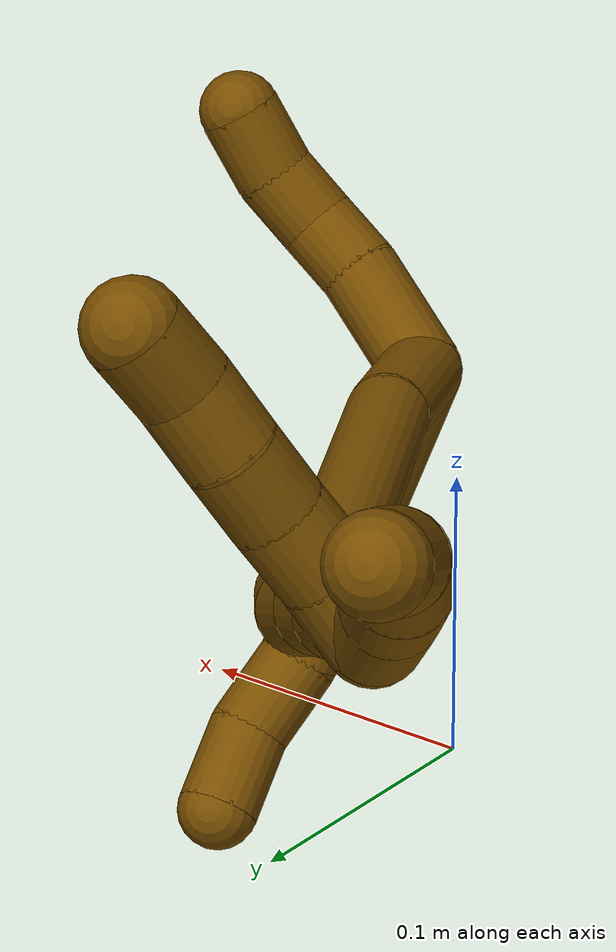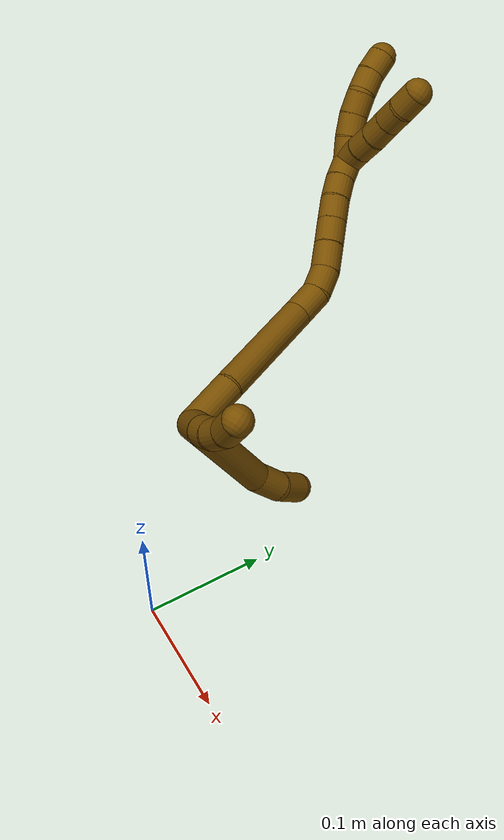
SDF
<sdf version="1.7">
 <world name="default">
  <model name="12">
   <static>0</static>
   <link name="12">
    <collision name="collision-cylinder-e_1_2_8">
     <pose>0.0424 0.023278 -0.001446 -1.63282 1.0679 -1.12307</pose>
     <geometry><cylinder><radius>0.0125</radius><length>0.096783</length></cylinder></geometry>
     <surface>
      <friction><ode><mu>1.16</mu><mu2>1.16</mu2><slip1>0</slip1><slip2>0</slip2></ode></friction>
      <contact><ode><kp>1e+06</kp><kd>1</kd><max_vel>0</max_vel><min_depth>0.001</min_depth></ode></contact>
     </surface>
    </collision>
    <visual name="visual-cylinder-e_1_2_8">
     <pose>0.0424 0.023278 -0.001446 -1.63282 1.0679 -1.12307</pose>
     <geometry><cylinder><radius>0.0125</radius><length>0.096783</length></cylinder></geometry>
     <material><ambient>0.466667 0.301961 0 1</ambient></material>
    </visual>
    <collision name="collision-cylinder-e_2_8_9">
     <pose>0.097167 0.050752 -0.000711 -1.09154 1.20558 -0.791797</pose>
     <geometry><cylinder><radius>0.0125</radius><length>0.026479</length></cylinder></geometry>
     <surface>
      <friction><ode><mu>1.16</mu><mu2>1.16</mu2><slip1>0</slip1><slip2>0</slip2></ode></friction>
      <contact><ode><kp>1e+06</kp><kd>1</kd><max_vel>0</max_vel><min_depth>0.001</min_depth></ode></contact>
     </surface>
    </collision>
    <visual name="visual-cylinder-e_2_8_9">
     <pose>0.097167 0.050752 -0.000711 -1.09154 1.20558 -0.791797</pose>
     <geometry><cylinder><radius>0.0125</radius><length>0.026479</length></cylinder></geometry>
     <material><ambient>0.466667 0.301961 0 1</ambient></material>
    </visual>
    <collision name="collision-cylinder-e_3_9_6">
     <pose>0.11982 0.062226 0.005933 -1.02069 0.878075 -0.514145</pose>
     <geometry><cylinder><radius>0.0125</radius><length>0.026738</length></cylinder></geometry>
     <surface>
      <friction><ode><mu>1.16</mu><mu2>1.16</mu2><slip1>0</slip1><slip2>0</slip2></ode></friction>
      <contact><ode><kp>1e+06</kp><kd>1</kd><max_vel>0</max_vel><min_depth>0.001</min_depth></ode></contact>
     </surface>
    </collision>
    <visual name="visual-cylinder-e_3_9_6">
     <pose>0.11982 0.062226 0.005933 -1.02069 0.878075 -0.514145</pose>
     <geometry><cylinder><radius>0.0125</radius><length>0.026738</length></cylinder></geometry>
     <material><ambient>0.466667 0.301961 0 1</ambient></material>
    </visual>
    <collision name="collision-cylinder-e_1_2_10">
     <pose>-0.001351 -0.018554 -0.001456 1.64913 -0.072459 -0.078364</pose>
     <geometry><cylinder><radius>0.0125</radius><length>0.037319</length></cylinder></geometry>
     <surface>
      <friction><ode><mu>1.16</mu><mu2>1.16</mu2><slip1>0</slip1><slip2>0</slip2></ode></friction>
      <contact><ode><kp>1e+06</kp><kd>1</kd><max_vel>0</max_vel><min_depth>0.001</min_depth></ode></contact>
     </surface>
    </collision>
    <visual name="visual-cylinder-e_1_2_10">
     <pose>-0.001351 -0.018554 -0.001456 1.64913 -0.072459 -0.078364</pose>
     <geometry><cylinder><radius>0.0125</radius><length>0.037319</length></cylinder></geometry>
     <material><ambient>0.466667 0.301961 0 1</ambient></material>
    </visual>
    <collision name="collision-cylinder-e_2_10_11">
     <pose>-0.002004 -0.047098 -0.002836 1.56316 0.069693 0.069163</pose>
     <geometry><cylinder><radius>0.0125</radius><length>0.020031</length></cylinder></geometry>
     <surface>
      <friction><ode><mu>1.16</mu><mu2>1.16</mu2><slip1>0</slip1><slip2>0</slip2></ode></friction>
      <contact><ode><kp>1e+06</kp><kd>1</kd><max_vel>0</max_vel><min_depth>0.001</min_depth></ode></contact>
     </surface>
    </collision>
    <visual name="visual-cylinder-e_2_10_11">
     <pose>-0.002004 -0.047098 -0.002836 1.56316 0.069693 0.069163</pose>
     <geometry><cylinder><radius>0.0125</radius><length>0.020031</length></cylinder></geometry>
     <material><ambient>0.466667 0.301961 0 1</ambient></material>
    </visual>
    <collision name="collision-cylinder-e_3_11_12">
     <pose>-0.00095 -0.066755 -5.8e-05 1.29821 0.035541 0.02697</pose>
     <geometry><cylinder><radius>0.0125</radius><length>0.020085</length></cylinder></geometry>
     <surface>
      <friction><ode><mu>1.16</mu><mu2>1.16</mu2><slip1>0</slip1><slip2>0</slip2></ode></friction>
      <contact><ode><kp>1e+06</kp><kd>1</kd><max_vel>0</max_vel><min_depth>0.001</min_depth></ode></contact>
     </surface>
    </collision>
    <visual name="visual-cylinder-e_3_11_12">
     <pose>-0.00095 -0.066755 -5.8e-05 1.29821 0.035541 0.02697</pose>
     <geometry><cylinder><radius>0.0125</radius><length>0.020085</length></cylinder></geometry>
     <material><ambient>0.466667 0.301961 0 1</ambient></material>
    </visual>
    <collision name="collision-cylinder-e_4_12_5">
     <pose>-0.002636 -0.086593 0.007074 1.16003 -0.182036 -0.119456</pose>
     <geometry><cylinder><radius>0.0125</radius><length>0.022564</length></cylinder></geometry>
     <surface>
      <friction><ode><mu>1.16</mu><mu2>1.16</mu2><slip1>0</slip1><slip2>0</slip2></ode></friction>
      <contact><ode><kp>1e+06</kp><kd>1</kd><max_vel>0</max_vel><min_depth>0.001</min_depth></ode></contact>
     </surface>
    </collision>
    <visual name="visual-cylinder-e_4_12_5">
     <pose>-0.002636 -0.086593 0.007074 1.16003 -0.182036 -0.119456</pose>
     <geometry><cylinder><radius>0.0125</radius><length>0.022564</length></cylinder></geometry>
     <material><ambient>0.466667 0.301961 0 1</ambient></material>
    </visual>
    <collision name="collision-cylinder-e_1_2_13">
     <pose>0.005824 0.005919 0.020802 -0.277224 0.263026 -0.036903</pose>
     <geometry><cylinder><radius>0.0125</radius><length>0.044796</length></cylinder></geometry>
     <surface>
      <friction><ode><mu>1.16</mu><mu2>1.16</mu2><slip1>0</slip1><slip2>0</slip2></ode></friction>
      <contact><ode><kp>1e+06</kp><kd>1</kd><max_vel>0</max_vel><min_depth>0.001</min_depth></ode></contact>
     </surface>
    </collision>
    <visual name="visual-cylinder-e_1_2_13">
     <pose>0.005824 0.005919 0.020802 -0.277224 0.263026 -0.036903</pose>
     <geometry><cylinder><radius>0.0125</radius><length>0.044796</length></cylinder></geometry>
     <material><ambient>0.466667 0.301961 0 1</ambient></material>
    </visual>
    <collision name="collision-cylinder-e_2_13_14">
     <pose>0.026443 0.032172 0.085268 -0.435822 0.298022 -0.066459</pose>
     <geometry><cylinder><radius>0.0125</radius><length>0.100776</length></cylinder></geometry>
     <surface>
      <friction><ode><mu>1.16</mu><mu2>1.16</mu2><slip1>0</slip1><slip2>0</slip2></ode></friction>
      <contact><ode><kp>1e+06</kp><kd>1</kd><max_vel>0</max_vel><min_depth>0.001</min_depth></ode></contact>
     </surface>
    </collision>
    <visual name="visual-cylinder-e_2_13_14">
     <pose>0.026443 0.032172 0.085268 -0.435822 0.298022 -0.066459</pose>
     <geometry><cylinder><radius>0.0125</radius><length>0.100776</length></cylinder></geometry>
     <material><ambient>0.466667 0.301961 0 1</ambient></material>
    </visual>
    <collision name="collision-cylinder-e_3_14_15">
     <pose>0.044177 0.054671 0.141119 -0.175788 0.233108 -0.020635</pose>
     <geometry><cylinder><radius>0.0125</radius><length>0.025443</length></cylinder></geometry>
     <surface>
      <friction><ode><mu>1.16</mu><mu2>1.16</mu2><slip1>0</slip1><slip2>0</slip2></ode></friction>
      <contact><ode><kp>1e+06</kp><kd>1</kd><max_vel>0</max_vel><min_depth>0.001</min_depth></ode></contact>
     </surface>
    </collision>
    <visual name="visual-cylinder-e_3_14_15">
     <pose>0.044177 0.054671 0.141119 -0.175788 0.233108 -0.020635</pose>
     <geometry><cylinder><radius>0.0125</radius><length>0.025443</length></cylinder></geometry>
     <material><ambient>0.466667 0.301961 0 1</ambient></material>
    </visual>
    <collision name="collision-cylinder-e_4_15_16">
     <pose>0.046414 0.060213 0.16391 -0.308371 -0.062887 0.009777</pose>
     <geometry><cylinder><radius>0.0125</radius><length>0.022304</length></cylinder></geometry>
     <surface>
      <friction><ode><mu>1.16</mu><mu2>1.16</mu2><slip1>0</slip1><slip2>0</slip2></ode></friction>
      <contact><ode><kp>1e+06</kp><kd>1</kd><max_vel>0</max_vel><min_depth>0.001</min_depth></ode></contact>
     </surface>
    </collision>
    <visual name="visual-cylinder-e_4_15_16">
     <pose>0.046414 0.060213 0.16391 -0.308371 -0.062887 0.009777</pose>
     <geometry><cylinder><radius>0.0125</radius><length>0.022304</length></cylinder></geometry>
     <material><ambient>0.466667 0.301961 0 1</ambient></material>
    </visual>
    <collision name="collision-cylinder-e_5_16_17">
     <pose>0.04192 0.066801 0.185374 -0.287375 -0.323243 0.047171</pose>
     <geometry><cylinder><radius>0.0125</radius><length>0.023884</length></cylinder></geometry>
     <surface>
      <friction><ode><mu>1.16</mu><mu2>1.16</mu2><slip1>0</slip1><slip2>0</slip2></ode></friction>
      <contact><ode><kp>1e+06</kp><kd>1</kd><max_vel>0</max_vel><min_depth>0.001</min_depth></ode></contact>
     </surface>
    </collision>
    <visual name="visual-cylinder-e_5_16_17">
     <pose>0.04192 0.066801 0.185374 -0.287375 -0.323243 0.047171</pose>
     <geometry><cylinder><radius>0.0125</radius><length>0.023884</length></cylinder></geometry>
     <material><ambient>0.466667 0.301961 0 1</ambient></material>
    </visual>
    <collision name="collision-cylinder-e_6_17_18">
     <pose>0.034868 0.073441 0.206101 -0.334642 -0.302408 0.051458</pose>
     <geometry><cylinder><radius>0.0125</radius><length>0.021887</length></cylinder></geometry>
     <surface>
      <friction><ode><mu>1.16</mu><mu2>1.16</mu2><slip1>0</slip1><slip2>0</slip2></ode></friction>
      <contact><ode><kp>1e+06</kp><kd>1</kd><max_vel>0</max_vel><min_depth>0.001</min_depth></ode></contact>
     </surface>
    </collision>
    <visual name="visual-cylinder-e_6_17_18">
     <pose>0.034868 0.073441 0.206101 -0.334642 -0.302408 0.051458</pose>
     <geometry><cylinder><radius>0.0125</radius><length>0.021887</length></cylinder></geometry>
     <material><ambient>0.466667 0.301961 0 1</ambient></material>
    </visual>
    <collision name="collision-cylinder-e_7_18_19">
     <pose>0.028486 0.07984 0.225326 -0.307135 -0.307988 0.048044</pose>
     <geometry><cylinder><radius>0.0125</radius><length>0.020602</length></cylinder></geometry>
     <surface>
      <friction><ode><mu>1.16</mu><mu2>1.16</mu2><slip1>0</slip1><slip2>0</slip2></ode></friction>
      <contact><ode><kp>1e+06</kp><kd>1</kd><max_vel>0</max_vel><min_depth>0.001</min_depth></ode></contact>
     </surface>
    </collision>
    <visual name="visual-cylinder-e_7_18_19">
     <pose>0.028486 0.07984 0.225326 -0.307135 -0.307988 0.048044</pose>
     <geometry><cylinder><radius>0.0125</radius><length>0.020602</length></cylinder></geometry>
     <material><ambient>0.466667 0.301961 0 1</ambient></material>
    </visual>
    <collision name="collision-cylinder-e_8_19_20">
     <pose>0.023426 0.086178 0.243949 -0.348775 -0.193963 0.034276</pose>
     <geometry><cylinder><radius>0.0125</radius><length>0.020096</length></cylinder></geometry>
     <surface>
      <friction><ode><mu>1.16</mu><mu2>1.16</mu2><slip1>0</slip1><slip2>0</slip2></ode></friction>
      <contact><ode><kp>1e+06</kp><kd>1</kd><max_vel>0</max_vel><min_depth>0.001</min_depth></ode></contact>
     </surface>
    </collision>
    <visual name="visual-cylinder-e_8_19_20">
     <pose>0.023426 0.086178 0.243949 -0.348775 -0.193963 0.034276</pose>
     <geometry><cylinder><radius>0.0125</radius><length>0.020096</length></cylinder></geometry>
     <material><ambient>0.466667 0.301961 0 1</ambient></material>
    </visual>
    <collision name="collision-cylinder-e_9_20_1">
     <pose>0.020637 0.092501 0.262842 -0.297713 -0.084513 0.012681</pose>
     <geometry><cylinder><radius>0.0125</radius><length>0.020212</length></cylinder></geometry>
     <surface>
      <friction><ode><mu>1.16</mu><mu2>1.16</mu2><slip1>0</slip1><slip2>0</slip2></ode></friction>
      <contact><ode><kp>1e+06</kp><kd>1</kd><max_vel>0</max_vel><min_depth>0.001</min_depth></ode></contact>
     </surface>
    </collision>
    <visual name="visual-cylinder-e_9_20_1">
     <pose>0.020637 0.092501 0.262842 -0.297713 -0.084513 0.012681</pose>
     <geometry><cylinder><radius>0.0125</radius><length>0.020212</length></cylinder></geometry>
     <material><ambient>0.466667 0.301961 0 1</ambient></material>
    </visual>
    <collision name="collision-cylinder-e_1_1_21">
     <pose>0.018946 0.08681 0.277425 1.05025 -0.083844 -0.048597</pose>
     <geometry><cylinder><radius>0.0125</radius><length>0.02</length></cylinder></geometry>
     <surface>
      <friction><ode><mu>1.16</mu><mu2>1.16</mu2><slip1>0</slip1><slip2>0</slip2></ode></friction>
      <contact><ode><kp>1e+06</kp><kd>1</kd><max_vel>0</max_vel><min_depth>0.001</min_depth></ode></contact>
     </surface>
    </collision>
    <visual name="visual-cylinder-e_1_1_21">
     <pose>0.018946 0.08681 0.277425 1.05025 -0.083844 -0.048597</pose>
     <geometry><cylinder><radius>0.0125</radius><length>0.02</length></cylinder></geometry>
     <material><ambient>0.466667 0.301961 0 1</ambient></material>
    </visual>
    <collision name="collision-cylinder-e_2_21_22">
     <pose>0.017719 0.06972 0.287723 1.00675 -0.039005 -0.021482</pose>
     <geometry><cylinder><radius>0.0125</radius><length>0.02</length></cylinder></geometry>
     <surface>
      <friction><ode><mu>1.16</mu><mu2>1.16</mu2><slip1>0</slip1><slip2>0</slip2></ode></friction>
      <contact><ode><kp>1e+06</kp><kd>1</kd><max_vel>0</max_vel><min_depth>0.001</min_depth></ode></contact>
     </surface>
    </collision>
    <visual name="visual-cylinder-e_2_21_22">
     <pose>0.017719 0.06972 0.287723 1.00675 -0.039005 -0.021482</pose>
     <geometry><cylinder><radius>0.0125</radius><length>0.02</length></cylinder></geometry>
     <material><ambient>0.466667 0.301961 0 1</ambient></material>
    </visual>
    <collision name="collision-cylinder-e_3_22_23">
     <pose>0.016484 0.053367 0.299126 0.91691 -0.084575 -0.041759</pose>
     <geometry><cylinder><radius>0.0125</radius><length>0.02</length></cylinder></geometry>
     <surface>
      <friction><ode><mu>1.16</mu><mu2>1.16</mu2><slip1>0</slip1><slip2>0</slip2></ode></friction>
      <contact><ode><kp>1e+06</kp><kd>1</kd><max_vel>0</max_vel><min_depth>0.001</min_depth></ode></contact>
     </surface>
    </collision>
    <visual name="visual-cylinder-e_3_22_23">
     <pose>0.016484 0.053367 0.299126 0.91691 -0.084575 -0.041759</pose>
     <geometry><cylinder><radius>0.0125</radius><length>0.02</length></cylinder></geometry>
     <material><ambient>0.466667 0.301961 0 1</ambient></material>
    </visual>
    <collision name="collision-cylinder-e_4_23_24">
     <pose>0.014822 0.036956 0.310388 1.02172 -0.081769 -0.045848</pose>
     <geometry><cylinder><radius>0.0125</radius><length>0.02</length></cylinder></geometry>
     <surface>
      <friction><ode><mu>1.16</mu><mu2>1.16</mu2><slip1>0</slip1><slip2>0</slip2></ode></friction>
      <contact><ode><kp>1e+06</kp><kd>1</kd><max_vel>0</max_vel><min_depth>0.001</min_depth></ode></contact>
     </surface>
    </collision>
    <visual name="visual-cylinder-e_4_23_24">
     <pose>0.014822 0.036956 0.310388 1.02172 -0.081769 -0.045848</pose>
     <geometry><cylinder><radius>0.0125</radius><length>0.02</length></cylinder></geometry>
     <material><ambient>0.466667 0.301961 0 1</ambient></material>
    </visual>
    <collision name="collision-cylinder-e_5_24_4">
     <pose>0.01359 0.021071 0.322321 0.831607 -0.041547 -0.018347</pose>
     <geometry><cylinder><radius>0.0125</radius><length>0.02</length></cylinder></geometry>
     <surface>
      <friction><ode><mu>1.16</mu><mu2>1.16</mu2><slip1>0</slip1><slip2>0</slip2></ode></friction>
      <contact><ode><kp>1e+06</kp><kd>1</kd><max_vel>0</max_vel><min_depth>0.001</min_depth></ode></contact>
     </surface>
    </collision>
    <visual name="visual-cylinder-e_5_24_4">
     <pose>0.01359 0.021071 0.322321 0.831607 -0.041547 -0.018347</pose>
     <geometry><cylinder><radius>0.0125</radius><length>0.02</length></cylinder></geometry>
     <material><ambient>0.466667 0.301961 0 1</ambient></material>
    </visual>
    <collision name="collision-cylinder-e_1_1_25">
     <pose>0.01481 0.095456 0.281144 -7.7e-05 -0.520528 2.1e-05</pose>
     <geometry><cylinder><radius>0.0125</radius><length>0.02</length></cylinder></geometry>
     <surface>
      <friction><ode><mu>1.16</mu><mu2>1.16</mu2><slip1>0</slip1><slip2>0</slip2></ode></friction>
      <contact><ode><kp>1e+06</kp><kd>1</kd><max_vel>0</max_vel><min_depth>0.001</min_depth></ode></contact>
     </surface>
    </collision>
    <visual name="visual-cylinder-e_1_1_25">
     <pose>0.01481 0.095456 0.281144 -7.7e-05 -0.520528 2.1e-05</pose>
     <geometry><cylinder><radius>0.0125</radius><length>0.02</length></cylinder></geometry>
     <material><ambient>0.466667 0.301961 0 1</ambient></material>
    </visual>
    <collision name="collision-cylinder-e_2_25_26">
     <pose>0.005955 0.095574 0.299035 -0.01276 -0.398695 0.002578</pose>
     <geometry><cylinder><radius>0.0125</radius><length>0.02</length></cylinder></geometry>
     <surface>
      <friction><ode><mu>1.16</mu><mu2>1.16</mu2><slip1>0</slip1><slip2>0</slip2></ode></friction>
      <contact><ode><kp>1e+06</kp><kd>1</kd><max_vel>0</max_vel><min_depth>0.001</min_depth></ode></contact>
     </surface>
    </collision>
    <visual name="visual-cylinder-e_2_25_26">
     <pose>0.005955 0.095574 0.299035 -0.01276 -0.398695 0.002578</pose>
     <geometry><cylinder><radius>0.0125</radius><length>0.02</length></cylinder></geometry>
     <material><ambient>0.466667 0.301961 0 1</ambient></material>
    </visual>
    <collision name="collision-cylinder-e_3_26_27">
     <pose>-0.000638 0.094547 0.317807 0.119115 -0.274426 -0.016467</pose>
     <geometry><cylinder><radius>0.0125</radius><length>0.02</length></cylinder></geometry>
     <surface>
      <friction><ode><mu>1.16</mu><mu2>1.16</mu2><slip1>0</slip1><slip2>0</slip2></ode></friction>
      <contact><ode><kp>1e+06</kp><kd>1</kd><max_vel>0</max_vel><min_depth>0.001</min_depth></ode></contact>
     </surface>
    </collision>
    <visual name="visual-cylinder-e_3_26_27">
     <pose>-0.000638 0.094547 0.317807 0.119115 -0.274426 -0.016467</pose>
     <geometry><cylinder><radius>0.0125</radius><length>0.02</length></cylinder></geometry>
     <material><ambient>0.466667 0.301961 0 1</ambient></material>
    </visual>
    <collision name="collision-cylinder-e_4_27_28">
     <pose>-0.004431 0.094792 0.337208 -0.140162 -0.108527 0.007626</pose>
     <geometry><cylinder><radius>0.0125</radius><length>0.02</length></cylinder></geometry>
     <surface>
      <friction><ode><mu>1.16</mu><mu2>1.16</mu2><slip1>0</slip1><slip2>0</slip2></ode></friction>
      <contact><ode><kp>1e+06</kp><kd>1</kd><max_vel>0</max_vel><min_depth>0.001</min_depth></ode></contact>
     </surface>
    </collision>
    <visual name="visual-cylinder-e_4_27_28">
     <pose>-0.004431 0.094792 0.337208 -0.140162 -0.108527 0.007626</pose>
     <geometry><cylinder><radius>0.0125</radius><length>0.02</length></cylinder></geometry>
     <material><ambient>0.466667 0.301961 0 1</ambient></material>
    </visual>
    <collision name="collision-cylinder-e_5_28_3">
     <pose>-0.005123 0.096898 0.357019 -0.071806 0.039115 -0.001405</pose>
     <geometry><cylinder><radius>0.0125</radius><length>0.02</length></cylinder></geometry>
     <surface>
      <friction><ode><mu>1.16</mu><mu2>1.16</mu2><slip1>0</slip1><slip2>0</slip2></ode></friction>
      <contact><ode><kp>1e+06</kp><kd>1</kd><max_vel>0</max_vel><min_depth>0.001</min_depth></ode></contact>
     </surface>
    </collision>
    <visual name="visual-cylinder-e_5_28_3">
     <pose>-0.005123 0.096898 0.357019 -0.071806 0.039115 -0.001405</pose>
     <geometry><cylinder><radius>0.0125</radius><length>0.02</length></cylinder></geometry>
     <material><ambient>0.466667 0.301961 0 1</ambient></material>
    </visual>
    <collision name="collision-sphere-3">
     <pose>-0.004732 0.097615 0.366985 0 -0 0</pose>
     <geometry><sphere><radius>0.0125</radius></sphere></geometry>
     <surface>
      <friction><ode><mu>1.16</mu><mu2>1.16</mu2><slip1>0</slip1><slip2>0</slip2></ode></friction>
      <contact><ode><kp>1e+06</kp><kd>1</kd><max_vel>0</max_vel><min_depth>0.001</min_depth></ode></contact>
     </surface>
    </collision>
    <visual name="visual-sphere-3">
     <pose>-0.004732 0.097615 0.366985 0 -0 0</pose>
     <geometry><sphere><radius>0.0125</radius></sphere></geometry>
     <material><ambient>0.466667 0.301961 0 1</ambient></material>
    </visual>
    <collision name="collision-sphere-28">
     <pose>-0.005514 0.096181 0.347052 0 -0 0</pose>
     <geometry><sphere><radius>0.0125</radius></sphere></geometry>
     <surface>
      <friction><ode><mu>1.16</mu><mu2>1.16</mu2><slip1>0</slip1><slip2>0</slip2></ode></friction>
      <contact><ode><kp>1e+06</kp><kd>1</kd><max_vel>0</max_vel><min_depth>0.001</min_depth></ode></contact>
     </surface>
    </collision>
    <visual name="visual-sphere-28">
     <pose>-0.005514 0.096181 0.347052 0 -0 0</pose>
     <geometry><sphere><radius>0.0125</radius></sphere></geometry>
     <material><ambient>0.466667 0.301961 0 1</ambient></material>
    </visual>
    <collision name="collision-sphere-27">
     <pose>-0.003348 0.093404 0.327365 0 -0 0</pose>
     <geometry><sphere><radius>0.0125</radius></sphere></geometry>
     <surface>
      <friction><ode><mu>1.16</mu><mu2>1.16</mu2><slip1>0</slip1><slip2>0</slip2></ode></friction>
      <contact><ode><kp>1e+06</kp><kd>1</kd><max_vel>0</max_vel><min_depth>0.001</min_depth></ode></contact>
     </surface>
    </collision>
    <visual name="visual-sphere-27">
     <pose>-0.003348 0.093404 0.327365 0 -0 0</pose>
     <geometry><sphere><radius>0.0125</radius></sphere></geometry>
     <material><ambient>0.466667 0.301961 0 1</ambient></material>
    </visual>
    <collision name="collision-sphere-26">
     <pose>0.002072 0.095691 0.30825 0 -0 0</pose>
     <geometry><sphere><radius>0.0125</radius></sphere></geometry>
     <surface>
      <friction><ode><mu>1.16</mu><mu2>1.16</mu2><slip1>0</slip1><slip2>0</slip2></ode></friction>
      <contact><ode><kp>1e+06</kp><kd>1</kd><max_vel>0</max_vel><min_depth>0.001</min_depth></ode></contact>
     </surface>
    </collision>
    <visual name="visual-sphere-26">
     <pose>0.002072 0.095691 0.30825 0 -0 0</pose>
     <geometry><sphere><radius>0.0125</radius></sphere></geometry>
     <material><ambient>0.466667 0.301961 0 1</ambient></material>
    </visual>
    <collision name="collision-sphere-25">
     <pose>0.009837 0.095456 0.28982 0 -0 0</pose>
     <geometry><sphere><radius>0.0125</radius></sphere></geometry>
     <surface>
      <friction><ode><mu>1.16</mu><mu2>1.16</mu2><slip1>0</slip1><slip2>0</slip2></ode></friction>
      <contact><ode><kp>1e+06</kp><kd>1</kd><max_vel>0</max_vel><min_depth>0.001</min_depth></ode></contact>
     </surface>
    </collision>
    <visual name="visual-sphere-25">
     <pose>0.009837 0.095456 0.28982 0 -0 0</pose>
     <geometry><sphere><radius>0.0125</radius></sphere></geometry>
     <material><ambient>0.466667 0.301961 0 1</ambient></material>
    </visual>
    <collision name="collision-sphere-4">
     <pose>0.013175 0.013687 0.329052 0 -0 0</pose>
     <geometry><sphere><radius>0.0125</radius></sphere></geometry>
     <surface>
      <friction><ode><mu>1.16</mu><mu2>1.16</mu2><slip1>0</slip1><slip2>0</slip2></ode></friction>
      <contact><ode><kp>1e+06</kp><kd>1</kd><max_vel>0</max_vel><min_depth>0.001</min_depth></ode></contact>
     </surface>
    </collision>
    <visual name="visual-sphere-4">
     <pose>0.013175 0.013687 0.329052 0 -0 0</pose>
     <geometry><sphere><radius>0.0125</radius></sphere></geometry>
     <material><ambient>0.466667 0.301961 0 1</ambient></material>
    </visual>
    <collision name="collision-sphere-24">
     <pose>0.014006 0.028455 0.31559 0 -0 0</pose>
     <geometry><sphere><radius>0.0125</radius></sphere></geometry>
     <surface>
      <friction><ode><mu>1.16</mu><mu2>1.16</mu2><slip1>0</slip1><slip2>0</slip2></ode></friction>
      <contact><ode><kp>1e+06</kp><kd>1</kd><max_vel>0</max_vel><min_depth>0.001</min_depth></ode></contact>
     </surface>
    </collision>
    <visual name="visual-sphere-24">
     <pose>0.014006 0.028455 0.31559 0 -0 0</pose>
     <geometry><sphere><radius>0.0125</radius></sphere></geometry>
     <material><ambient>0.466667 0.301961 0 1</ambient></material>
    </visual>
    <collision name="collision-sphere-23">
     <pose>0.015639 0.045458 0.305187 0 -0 0</pose>
     <geometry><sphere><radius>0.0125</radius></sphere></geometry>
     <surface>
      <friction><ode><mu>1.16</mu><mu2>1.16</mu2><slip1>0</slip1><slip2>0</slip2></ode></friction>
      <contact><ode><kp>1e+06</kp><kd>1</kd><max_vel>0</max_vel><min_depth>0.001</min_depth></ode></contact>
     </surface>
    </collision>
    <visual name="visual-sphere-23">
     <pose>0.015639 0.045458 0.305187 0 -0 0</pose>
     <geometry><sphere><radius>0.0125</radius></sphere></geometry>
     <material><ambient>0.466667 0.301961 0 1</ambient></material>
    </visual>
    <collision name="collision-sphere-22">
     <pose>0.017329 0.061276 0.293065 0 -0 0</pose>
     <geometry><sphere><radius>0.0125</radius></sphere></geometry>
     <surface>
      <friction><ode><mu>1.16</mu><mu2>1.16</mu2><slip1>0</slip1><slip2>0</slip2></ode></friction>
      <contact><ode><kp>1e+06</kp><kd>1</kd><max_vel>0</max_vel><min_depth>0.001</min_depth></ode></contact>
     </surface>
    </collision>
    <visual name="visual-sphere-22">
     <pose>0.017329 0.061276 0.293065 0 -0 0</pose>
     <geometry><sphere><radius>0.0125</radius></sphere></geometry>
     <material><ambient>0.466667 0.301961 0 1</ambient></material>
    </visual>
    <collision name="collision-sphere-21">
     <pose>0.018109 0.078165 0.282381 0 -0 0</pose>
     <geometry><sphere><radius>0.0125</radius></sphere></geometry>
     <surface>
      <friction><ode><mu>1.16</mu><mu2>1.16</mu2><slip1>0</slip1><slip2>0</slip2></ode></friction>
      <contact><ode><kp>1e+06</kp><kd>1</kd><max_vel>0</max_vel><min_depth>0.001</min_depth></ode></contact>
     </surface>
    </collision>
    <visual name="visual-sphere-21">
     <pose>0.018109 0.078165 0.282381 0 -0 0</pose>
     <geometry><sphere><radius>0.0125</radius></sphere></geometry>
     <material><ambient>0.466667 0.301961 0 1</ambient></material>
    </visual>
    <collision name="collision-sphere-1">
     <pose>0.019783 0.095455 0.272469 0 -0 0</pose>
     <geometry><sphere><radius>0.0125</radius></sphere></geometry>
     <surface>
      <friction><ode><mu>1.16</mu><mu2>1.16</mu2><slip1>0</slip1><slip2>0</slip2></ode></friction>
      <contact><ode><kp>1e+06</kp><kd>1</kd><max_vel>0</max_vel><min_depth>0.001</min_depth></ode></contact>
     </surface>
    </collision>
    <visual name="visual-sphere-1">
     <pose>0.019783 0.095455 0.272469 0 -0 0</pose>
     <geometry><sphere><radius>0.0125</radius></sphere></geometry>
     <material><ambient>0.466667 0.301961 0 1</ambient></material>
    </visual>
    <collision name="collision-sphere-11">
     <pose>-0.001307 -0.057089 -0.00276 0 -0 0</pose>
     <geometry><sphere><radius>0.0125</radius></sphere></geometry>
     <surface>
      <friction><ode><mu>1.16</mu><mu2>1.16</mu2><slip1>0</slip1><slip2>0</slip2></ode></friction>
      <contact><ode><kp>1e+06</kp><kd>1</kd><max_vel>0</max_vel><min_depth>0.001</min_depth></ode></contact>
     </surface>
    </collision>
    <visual name="visual-sphere-11">
     <pose>-0.001307 -0.057089 -0.00276 0 -0 0</pose>
     <geometry><sphere><radius>0.0125</radius></sphere></geometry>
     <material><ambient>0.466667 0.301961 0 1</ambient></material>
    </visual>
    <collision name="collision-sphere-10">
     <pose>-0.002702 -0.037107 -0.002913 0 -0 0</pose>
     <geometry><sphere><radius>0.0125</radius></sphere></geometry>
     <surface>
      <friction><ode><mu>1.16</mu><mu2>1.16</mu2><slip1>0</slip1><slip2>0</slip2></ode></friction>
      <contact><ode><kp>1e+06</kp><kd>1</kd><max_vel>0</max_vel><min_depth>0.001</min_depth></ode></contact>
     </surface>
    </collision>
    <visual name="visual-sphere-10">
     <pose>-0.002702 -0.037107 -0.002913 0 -0 0</pose>
     <geometry><sphere><radius>0.0125</radius></sphere></geometry>
     <material><ambient>0.466667 0.301961 0 1</ambient></material>
    </visual>
    <collision name="collision-sphere-6">
     <pose>0.130108 0.069504 0.010396 0 -0 0</pose>
     <geometry><sphere><radius>0.0125</radius></sphere></geometry>
     <surface>
      <friction><ode><mu>1.16</mu><mu2>1.16</mu2><slip1>0</slip1><slip2>0</slip2></ode></friction>
      <contact><ode><kp>1e+06</kp><kd>1</kd><max_vel>0</max_vel><min_depth>0.001</min_depth></ode></contact>
     </surface>
    </collision>
    <visual name="visual-sphere-6">
     <pose>0.130108 0.069504 0.010396 0 -0 0</pose>
     <geometry><sphere><radius>0.0125</radius></sphere></geometry>
     <material><ambient>0.466667 0.301961 0 1</ambient></material>
    </visual>
    <collision name="collision-sphere-9">
     <pose>0.109533 0.054948 0.001469 0 -0 0</pose>
     <geometry><sphere><radius>0.0125</radius></sphere></geometry>
     <surface>
      <friction><ode><mu>1.16</mu><mu2>1.16</mu2><slip1>0</slip1><slip2>0</slip2></ode></friction>
      <contact><ode><kp>1e+06</kp><kd>1</kd><max_vel>0</max_vel><min_depth>0.001</min_depth></ode></contact>
     </surface>
    </collision>
    <visual name="visual-sphere-9">
     <pose>0.109533 0.054948 0.001469 0 -0 0</pose>
     <geometry><sphere><radius>0.0125</radius></sphere></geometry>
     <material><ambient>0.466667 0.301961 0 1</ambient></material>
    </visual>
    <collision name="collision-sphere-2">
     <geometry><sphere><radius>0.0125</radius></sphere></geometry>
     <surface>
      <friction><ode><mu>1.16</mu><mu2>1.16</mu2><slip1>0</slip1><slip2>0</slip2></ode></friction>
      <contact><ode><kp>1e+06</kp><kd>1</kd><max_vel>0</max_vel><min_depth>0.001</min_depth></ode></contact>
     </surface>
    </collision>
    <visual name="visual-sphere-2">
     <geometry><sphere><radius>0.0125</radius></sphere></geometry>
     <material><ambient>0.466667 0.301961 0 1</ambient></material>
    </visual>
    <collision name="collision-sphere-19">
     <pose>0.025363 0.082808 0.234682 0 -0 0</pose>
     <geometry><sphere><radius>0.0125</radius></sphere></geometry>
     <surface>
      <friction><ode><mu>1.16</mu><mu2>1.16</mu2><slip1>0</slip1><slip2>0</slip2></ode></friction>
      <contact><ode><kp>1e+06</kp><kd>1</kd><max_vel>0</max_vel><min_depth>0.001</min_depth></ode></contact>
     </surface>
    </collision>
    <visual name="visual-sphere-19">
     <pose>0.025363 0.082808 0.234682 0 -0 0</pose>
     <geometry><sphere><radius>0.0125</radius></sphere></geometry>
     <material><ambient>0.466667 0.301961 0 1</ambient></material>
    </visual>
    <collision name="collision-sphere-8">
     <pose>0.084801 0.046556 -0.002891 0 -0 0</pose>
     <geometry><sphere><radius>0.0125</radius></sphere></geometry>
     <surface>
      <friction><ode><mu>1.16</mu><mu2>1.16</mu2><slip1>0</slip1><slip2>0</slip2></ode></friction>
      <contact><ode><kp>1e+06</kp><kd>1</kd><max_vel>0</max_vel><min_depth>0.001</min_depth></ode></contact>
     </surface>
    </collision>
    <visual name="visual-sphere-8">
     <pose>0.084801 0.046556 -0.002891 0 -0 0</pose>
     <geometry><sphere><radius>0.0125</radius></sphere></geometry>
     <material><ambient>0.466667 0.301961 0 1</ambient></material>
    </visual>
    <collision name="collision-sphere-12">
     <pose>-0.000593 -0.07642 0.002644 0 -0 0</pose>
     <geometry><sphere><radius>0.0125</radius></sphere></geometry>
     <surface>
      <friction><ode><mu>1.16</mu><mu2>1.16</mu2><slip1>0</slip1><slip2>0</slip2></ode></friction>
      <contact><ode><kp>1e+06</kp><kd>1</kd><max_vel>0</max_vel><min_depth>0.001</min_depth></ode></contact>
     </surface>
    </collision>
    <visual name="visual-sphere-12">
     <pose>-0.000593 -0.07642 0.002644 0 -0 0</pose>
     <geometry><sphere><radius>0.0125</radius></sphere></geometry>
     <material><ambient>0.466667 0.301961 0 1</ambient></material>
    </visual>
    <collision name="collision-sphere-5">
     <pose>-0.004678 -0.096766 0.011505 0 -0 0</pose>
     <geometry><sphere><radius>0.0125</radius></sphere></geometry>
     <surface>
      <friction><ode><mu>1.16</mu><mu2>1.16</mu2><slip1>0</slip1><slip2>0</slip2></ode></friction>
      <contact><ode><kp>1e+06</kp><kd>1</kd><max_vel>0</max_vel><min_depth>0.001</min_depth></ode></contact>
     </surface>
    </collision>
    <visual name="visual-sphere-5">
     <pose>-0.004678 -0.096766 0.011505 0 -0 0</pose>
     <geometry><sphere><radius>0.0125</radius></sphere></geometry>
     <material><ambient>0.466667 0.301961 0 1</ambient></material>
    </visual>
    <collision name="collision-sphere-13">
     <pose>0.011647 0.011838 0.041604 0 -0 0</pose>
     <geometry><sphere><radius>0.0125</radius></sphere></geometry>
     <surface>
      <friction><ode><mu>1.16</mu><mu2>1.16</mu2><slip1>0</slip1><slip2>0</slip2></ode></friction>
      <contact><ode><kp>1e+06</kp><kd>1</kd><max_vel>0</max_vel><min_depth>0.001</min_depth></ode></contact>
     </surface>
    </collision>
    <visual name="visual-sphere-13">
     <pose>0.011647 0.011838 0.041604 0 -0 0</pose>
     <geometry><sphere><radius>0.0125</radius></sphere></geometry>
     <material><ambient>0.466667 0.301961 0 1</ambient></material>
    </visual>
    <collision name="collision-sphere-14">
     <pose>0.041238 0.052506 0.128932 0 -0 0</pose>
     <geometry><sphere><radius>0.0125</radius></sphere></geometry>
     <surface>
      <friction><ode><mu>1.16</mu><mu2>1.16</mu2><slip1>0</slip1><slip2>0</slip2></ode></friction>
      <contact><ode><kp>1e+06</kp><kd>1</kd><max_vel>0</max_vel><min_depth>0.001</min_depth></ode></contact>
     </surface>
    </collision>
    <visual name="visual-sphere-14">
     <pose>0.041238 0.052506 0.128932 0 -0 0</pose>
     <geometry><sphere><radius>0.0125</radius></sphere></geometry>
     <material><ambient>0.466667 0.301961 0 1</ambient></material>
    </visual>
    <collision name="collision-sphere-15">
     <pose>0.047115 0.056835 0.153306 0 -0 0</pose>
     <geometry><sphere><radius>0.0125</radius></sphere></geometry>
     <surface>
      <friction><ode><mu>1.16</mu><mu2>1.16</mu2><slip1>0</slip1><slip2>0</slip2></ode></friction>
      <contact><ode><kp>1e+06</kp><kd>1</kd><max_vel>0</max_vel><min_depth>0.001</min_depth></ode></contact>
     </surface>
    </collision>
    <visual name="visual-sphere-15">
     <pose>0.047115 0.056835 0.153306 0 -0 0</pose>
     <geometry><sphere><radius>0.0125</radius></sphere></geometry>
     <material><ambient>0.466667 0.301961 0 1</ambient></material>
    </visual>
    <collision name="collision-sphere-16">
     <pose>0.045714 0.063591 0.174515 0 -0 0</pose>
     <geometry><sphere><radius>0.0125</radius></sphere></geometry>
     <surface>
      <friction><ode><mu>1.16</mu><mu2>1.16</mu2><slip1>0</slip1><slip2>0</slip2></ode></friction>
      <contact><ode><kp>1e+06</kp><kd>1</kd><max_vel>0</max_vel><min_depth>0.001</min_depth></ode></contact>
     </surface>
    </collision>
    <visual name="visual-sphere-16">
     <pose>0.045714 0.063591 0.174515 0 -0 0</pose>
     <geometry><sphere><radius>0.0125</radius></sphere></geometry>
     <material><ambient>0.466667 0.301961 0 1</ambient></material>
    </visual>
    <collision name="collision-sphere-17">
     <pose>0.038127 0.07001 0.196233 0 -0 0</pose>
     <geometry><sphere><radius>0.0125</radius></sphere></geometry>
     <surface>
      <friction><ode><mu>1.16</mu><mu2>1.16</mu2><slip1>0</slip1><slip2>0</slip2></ode></friction>
      <contact><ode><kp>1e+06</kp><kd>1</kd><max_vel>0</max_vel><min_depth>0.001</min_depth></ode></contact>
     </surface>
    </collision>
    <visual name="visual-sphere-17">
     <pose>0.038127 0.07001 0.196233 0 -0 0</pose>
     <geometry><sphere><radius>0.0125</radius></sphere></geometry>
     <material><ambient>0.466667 0.301961 0 1</ambient></material>
    </visual>
    <collision name="collision-sphere-18">
     <pose>0.031608 0.076873 0.215969 0 -0 0</pose>
     <geometry><sphere><radius>0.0125</radius></sphere></geometry>
     <surface>
      <friction><ode><mu>1.16</mu><mu2>1.16</mu2><slip1>0</slip1><slip2>0</slip2></ode></friction>
      <contact><ode><kp>1e+06</kp><kd>1</kd><max_vel>0</max_vel><min_depth>0.001</min_depth></ode></contact>
     </surface>
    </collision>
    <visual name="visual-sphere-18">
     <pose>0.031608 0.076873 0.215969 0 -0 0</pose>
     <geometry><sphere><radius>0.0125</radius></sphere></geometry>
     <material><ambient>0.466667 0.301961 0 1</ambient></material>
    </visual>
    <collision name="collision-sphere-20">
     <pose>0.02149 0.089547 0.253215 0 -0 0</pose>
     <geometry><sphere><radius>0.0125</radius></sphere></geometry>
     <surface>
      <friction><ode><mu>1.16</mu><mu2>1.16</mu2><slip1>0</slip1><slip2>0</slip2></ode></friction>
      <contact><ode><kp>1e+06</kp><kd>1</kd><max_vel>0</max_vel><min_depth>0.001</min_depth></ode></contact>
     </surface>
    </collision>
    <visual name="visual-sphere-20">
     <pose>0.02149 0.089547 0.253215 0 -0 0</pose>
     <geometry><sphere><radius>0.0125</radius></sphere></geometry>
     <material><ambient>0.466667 0.301961 0 1</ambient></material>
    </visual>
    <inertial>
     <pose>0.026504 0.039899 0.13653 0 -0 0</pose>
     <mass>0.75</mass>
     <inertia>
      <ixx>0.000116</ixx>
      <ixy>0</ixy>
      <ixz>0</ixz>
      <iyy>0.000136</iyy>
      <iyz>0</iyz>
      <izz>-0.00013</izz>
     </inertia>
    </inertial>
   </link>
   <pose>-0.033309 0.065704 0.167295 -0.972548 0.664179 0.806006</pose>
  </model>
 </world>
</sdf>
